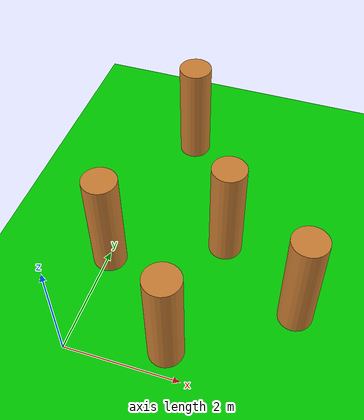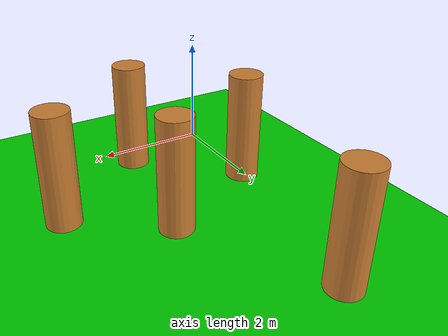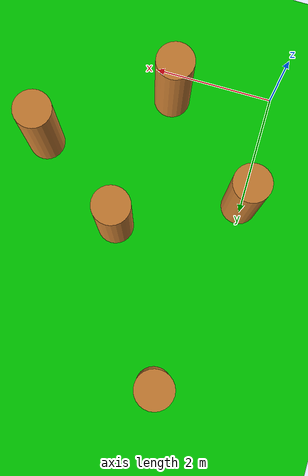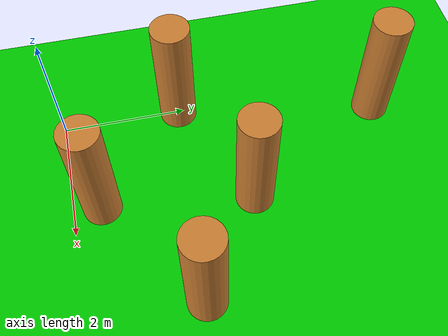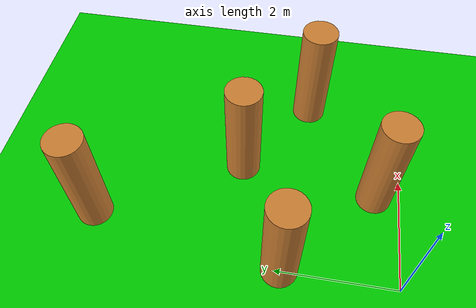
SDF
<sdf version="1.6">
 <world name="dorm">
  <plugin name="ignition::gazebo::systems::Physics" filename="ignition-gazebo-physics-system"/>
  <plugin name="ignition::gazebo::systems::UserCommands" filename="ignition-gazebo-user-commands-system"/>
  <plugin name="ignition::gazebo::systems::SceneBroadcaster" filename="ignition-gazebo-scene-broadcaster-system"/>
  <light name="sun" type="directional">
   <pose>0 0 10 0 -0 0</pose>
   <diffuse>0.8 0.8 0.8 1</diffuse>
   <specular>0.2 0.2 0.2 1</specular>
   <attenuation>
    <range>1000</range>
    <constant>0.9</constant>
    <linear>0.01</linear>
    <quadratic>0.001</quadratic>
   </attenuation>
   <direction>-0.5 0.1 -0.9</direction>
  </light>
  <model name="ground_plane">
   <static>1</static>
   <link name="link">
    <collision name="collision">
     <geometry><plane><normal>0 0 1</normal><size>6 8</size></plane></geometry>
    </collision>
    <visual name="visual">
     <geometry><plane><normal>0 0 1</normal><size>6 8</size></plane></geometry>
     <material>
      <ambient>0.8 0.8 0.8 1</ambient>
      <diffuse>0 0.8 0 1</diffuse>
      <specular>0.8 0.8 0.8 1</specular>
     </material>
    </visual>
   </link>
  </model>
  <model name="pillar1">
   <pose>1.92677 2.79416 1 0 -0 0</pose>
   <static>1</static>
   <link name="cylinder_link">
    <inertial>
     <inertia><ixx>0.1458</ixx><ixy>0</ixy><ixz>0</ixz><iyy>0.1458</iyy><iyz>0</iyz><izz>0.125</izz></inertia>
     <mass>1</mass>
    </inertial>
    <collision name="cylinder_collision">
     <geometry><cylinder><radius>0.3</radius><length>2</length></cylinder></geometry>
    </collision>
    <visual name="cylinder_visual">
     <geometry><cylinder><radius>0.3</radius><length>2</length></cylinder></geometry>
     <material><ambient>0 1 0 1</ambient><diffuse>0.8 0.5 0.2 1</diffuse><specular>0 1 0 1</specular></material>
    </visual>
   </link>
  </model>
  <model name="pillar2">
   <pose>0.035028 1.91182 1 0 -0 0</pose>
   <static>1</static>
   <link name="cylinder_link">
    <inertial>
     <inertia><ixx>0.1458</ixx><ixy>0</ixy><ixz>0</ixz><iyy>0.1458</iyy><iyz>0</iyz><izz>0.125</izz></inertia>
     <mass>1</mass>
    </inertial>
    <collision name="cylinder_collision">
     <geometry><cylinder><radius>0.3</radius><length>2</length></cylinder></geometry>
    </collision>
    <visual name="cylinder_visual">
     <geometry><cylinder><radius>0.3</radius><length>2</length></cylinder></geometry>
     <material><ambient>0 1 0 1</ambient><diffuse>0.8 0.5 0.2 1</diffuse><specular>0 1 0 1</specular></material>
    </visual>
   </link>
  </model>
  <model name="pillar3">
   <pose>0.595816 5.15263 1 0 -0 0</pose>
   <static>1</static>
   <link name="cylinder_link">
    <inertial>
     <inertia><ixx>0.1458</ixx><ixy>0</ixy><ixz>0</ixz><iyy>0.1458</iyy><iyz>0</iyz><izz>0.125</izz></inertia>
     <mass>1</mass>
    </inertial>
    <collision name="cylinder_collision">
     <geometry><cylinder><radius>0.3</radius><length>2</length></cylinder></geometry>
     <surface><contact>-DCMAKE_INSTALL</contact></surface>
    </collision>
    <visual name="cylinder_visual">
     <geometry><cylinder><radius>0.3</radius><length>2</length></cylinder></geometry>
     <material><ambient>0 1 0 1</ambient><diffuse>0.8 0.5 0.2 1</diffuse><specular>0 1 0 1</specular></material>
    </visual>
   </link>
  </model>
  <model name="pillar4">
   <pose>1.61481 0.446817 1 0 -0 0</pose>
   <static>1</static>
   <link name="cylinder_link">
    <inertial>
     <inertia><ixx>0.1458</ixx><ixy>0</ixy><ixz>0</ixz><iyy>0.1458</iyy><iyz>0</iyz><izz>0.125</izz></inertia>
     <mass>1</mass>
    </inertial>
    <collision name="cylinder_collision">
     <geometry><cylinder><radius>0.3</radius><length>2</length></cylinder></geometry>
    </collision>
    <visual name="cylinder_visual">
     <geometry><cylinder><radius>0.3</radius><length>2</length></cylinder></geometry>
     <material><ambient>0 1 0 1</ambient><diffuse>0.8 0.5 0.2 1</diffuse><specular>0 1 0 1</specular></material>
    </visual>
   </link>
  </model>
  <model name="pillar5">
   <pose>3.44668 1.73484 1 0 -0 0</pose>
   <static>1</static>
   <link name="cylinder_link">
    <inertial>
     <inertia><ixx>0.1458</ixx><ixy>0</ixy><ixz>0</ixz><iyy>0.1458</iyy><iyz>0</iyz><izz>0.125</izz></inertia>
     <mass>1</mass>
    </inertial>
    <collision name="cylinder_collision">
     <geometry><cylinder><radius>0.3</radius><length>2</length></cylinder></geometry>
    </collision>
    <visual name="cylinder_visual">
     <geometry><cylinder><radius>0.3</radius><length>2</length></cylinder></geometry>
     <material><ambient>0 1 0 1</ambient><diffuse>0.8 0.5 0.2 1</diffuse><specular>0 1 0 1</specular></material>
    </visual>
   </link>
  </model>
  <gravity>0 0 -9.8</gravity>
  <magnetic_field>6e-06 2.3e-05 -4.2e-05</magnetic_field>
  <atmosphere type="adiabatic"/>
  <physics name="default_physics" default="0" type="ode">
   <max_step_size>0.001</max_step_size>
   <real_time_factor>1</real_time_factor>
   <real_time_update_rate>1000</real_time_update_rate>
  </physics>
  <scene><ambient>0.4 0.4 0.4 1</ambient><background>0.7 0.7 0.7 1</background><shadows>1</shadows></scene>
  <spherical_coordinates>
   <surface_model>EARTH_WGS84</surface_model>
   <latitude_deg>0</latitude_deg>
   <longitude_deg>0</longitude_deg>
   <elevation>0</elevation>
   <heading_deg>0</heading_deg>
  </spherical_coordinates>
 </world>
</sdf>
